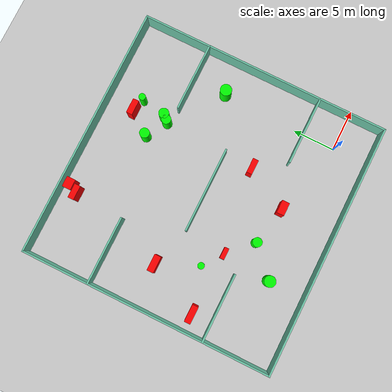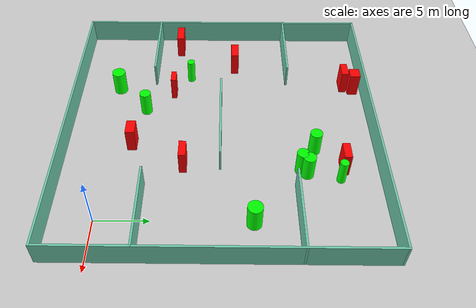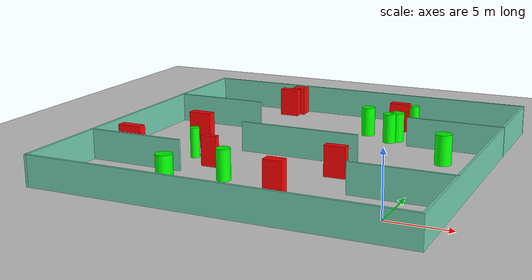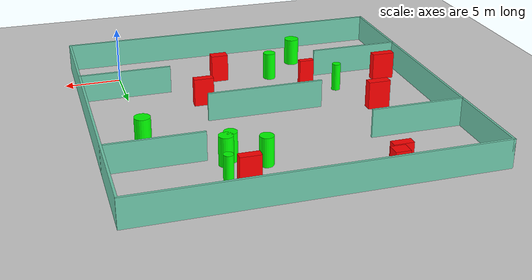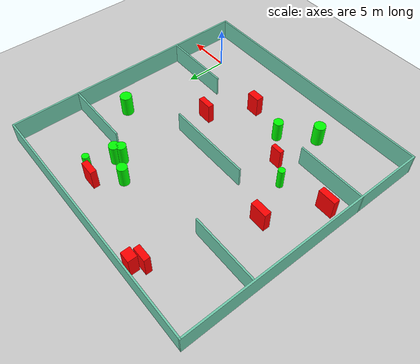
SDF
<sdf version="1.7">
 <world name="default">
  <light name="sun" type="directional">
   <pose>0 0 10 0 -0 0</pose>
   <diffuse>0.8 0.8 0.8 1</diffuse>
   <specular>0.2 0.2 0.2 1</specular>
   <attenuation>
    <range>1000</range>
    <constant>0.9</constant>
    <linear>0.01</linear>
    <quadratic>0.001</quadratic>
   </attenuation>
   <direction>-0.5 0.1 -0.9</direction>
   <spot><inner_angle>0</inner_angle><outer_angle>0</outer_angle><falloff>0</falloff></spot>
  </light>
  <model name="ground_plane">
   <static>1</static>
   <link name="link">
    <collision name="collision">
     <geometry><plane><normal>0 0 1</normal><size>100 100</size></plane></geometry>
     <surface>
      <contact><collide_bitmask>65535</collide_bitmask></contact>
      <friction><ode><mu>100</mu><mu2>50</mu2></ode></friction>
     </surface>
    </collision>
    <visual name="visual">
     <cast_shadows>0</cast_shadows>
     <geometry><plane><normal>0 0 1</normal><size>100 100</size></plane></geometry>
     <material>
      <script><uri>file://media/materials/scripts/gazebo.material</uri><name>Gazebo/Grey</name></script>
     </material>
    </visual>
   </link>
  </model>
  <gravity>0 0 -9.8</gravity>
  <magnetic_field>6e-06 2.3e-05 -4.2e-05</magnetic_field>
  <atmosphere type="adiabatic"/>
  <physics type="ode">
   <max_step_size>0.001</max_step_size>
   <real_time_factor>1</real_time_factor>
   <real_time_update_rate>1000</real_time_update_rate>
  </physics>
  <scene><ambient>0.4 0.4 0.4 1</ambient><background>0.7 0.7 0.7 1</background><shadows>1</shadows></scene>
  <spherical_coordinates>
   <surface_model>EARTH_WGS84</surface_model>
   <latitude_deg>0</latitude_deg>
   <longitude_deg>0</longitude_deg>
   <elevation>0</elevation>
   <heading_deg>0</heading_deg>
  </spherical_coordinates>
  <model name="my_base_walls">
   <link name="Wall_10">
    <collision name="Wall_10_Collision">
     <geometry><box><size>8.2 0.2 2.5</size></box></geometry>
     <pose>0 0 1.25 0 -0 0</pose>
    </collision>
    <visual name="Wall_10_Visual">
     <pose>0 0 1.25 0 -0 0</pose>
     <geometry><box><size>8.2 0.2 2.5</size></box></geometry>
     <material>
      <script><uri>file://media/materials/scripts/gazebo.material</uri><name>Gazebo/Grey</name></script>
      <ambient>0.435294 0.796078 0.67451 1</ambient>
     </material>
     <meta><layer>0</layer></meta>
    </visual>
    <pose>-11 -7 0 0 -0 0</pose>
   </link>
   <link name="Wall_12">
    <collision name="Wall_12_Collision">
     <geometry><box><size>8.2 0.2 2.5</size></box></geometry>
     <pose>0 0 1.25 0 -0 0</pose>
    </collision>
    <visual name="Wall_12_Visual">
     <pose>0 0 1.25 0 -0 0</pose>
     <geometry><box><size>8.2 0.2 2.5</size></box></geometry>
     <material>
      <script><uri>file://media/materials/scripts/gazebo.material</uri><name>Gazebo/Grey</name></script>
      <ambient>0.435294 0.796078 0.67451 1</ambient>
     </material>
     <meta><layer>0</layer></meta>
    </visual>
    <pose>-11 7 0 0 -0 0</pose>
   </link>
   <link name="Wall_14">
    <collision name="Wall_14_Collision">
     <geometry><box><size>8.2 0.2 2.5</size></box></geometry>
     <pose>0 0 1.25 0 -0 0</pose>
    </collision>
    <visual name="Wall_14_Visual">
     <pose>0 0 1.25 0 -0 0</pose>
     <geometry><box><size>8.2 0.2 2.5</size></box></geometry>
     <material>
      <script><uri>file://media/materials/scripts/gazebo.material</uri><name>Gazebo/Grey</name></script>
      <ambient>0.435294 0.796078 0.67451 1</ambient>
     </material>
     <meta><layer>0</layer></meta>
    </visual>
    <pose>11 7 0 0 -0 3.14159</pose>
   </link>
   <link name="Wall_16">
    <collision name="Wall_16_Collision">
     <geometry><box><size>10.2 0.2 2.5</size></box></geometry>
     <pose>0 0 1.25 0 -0 0</pose>
    </collision>
    <visual name="Wall_16_Visual">
     <pose>0 0 1.25 0 -0 0</pose>
     <geometry><box><size>10.2 0.2 2.5</size></box></geometry>
     <material>
      <script><uri>file://media/materials/scripts/gazebo.material</uri><name>Gazebo/Grey</name></script>
      <ambient>0.435294 0.796078 0.67451 1</ambient>
     </material>
     <meta><layer>0</layer></meta>
    </visual>
    <pose>0 0 0 0 -0 3.14159</pose>
   </link>
   <link name="Wall_2">
    <collision name="Wall_2_Collision">
     <geometry><box><size>30.2 0.2 2.5</size></box></geometry>
     <pose>0 0 1.25 0 -0 0</pose>
    </collision>
    <visual name="Wall_2_Visual">
     <pose>0 0 1.25 0 -0 0</pose>
     <geometry><box><size>30.2 0.2 2.5</size></box></geometry>
     <material>
      <script><uri>file://media/materials/scripts/gazebo.material</uri><name>Gazebo/Grey</name></script>
      <ambient>0.435294 0.796078 0.67451 1</ambient>
     </material>
     <meta><layer>0</layer></meta>
    </visual>
    <pose>0 -15 0 0 -0 3.14159</pose>
   </link>
   <link name="Wall_3">
    <collision name="Wall_3_Collision">
     <geometry><box><size>30.2 0.2 2.5</size></box></geometry>
     <pose>0 0 1.25 0 -0 0</pose>
    </collision>
    <visual name="Wall_3_Visual">
     <pose>0 0 1.25 0 -0 0</pose>
     <geometry><box><size>30.2 0.2 2.5</size></box></geometry>
     <material>
      <script><uri>file://media/materials/scripts/gazebo.material</uri><name>Gazebo/Grey</name></script>
      <ambient>0.435294 0.796078 0.67451 1</ambient>
     </material>
     <meta><layer>0</layer></meta>
    </visual>
    <pose>-15 0 0 0 -0 1.5708</pose>
   </link>
   <link name="Wall_4">
    <collision name="Wall_4_Collision">
     <geometry><box><size>30.2 0.2 2.5</size></box></geometry>
     <pose>0 0 1.25 0 -0 0</pose>
    </collision>
    <visual name="Wall_4_Visual">
     <pose>0 0 1.25 0 -0 0</pose>
     <geometry><box><size>30.2 0.2 2.5</size></box></geometry>
     <material>
      <script><uri>file://media/materials/scripts/gazebo.material</uri><name>Gazebo/Grey</name></script>
      <ambient>0.435294 0.796078 0.67451 1</ambient>
     </material>
     <meta><layer>0</layer></meta>
    </visual>
    <pose>0 15 0 0 -0 0</pose>
   </link>
   <link name="Wall_6">
    <collision name="Wall_6_Collision">
     <geometry><box><size>30.2 0.2 2.5</size></box></geometry>
     <pose>0 0 1.25 0 -0 0</pose>
    </collision>
    <visual name="Wall_6_Visual">
     <pose>0 0 1.25 0 -0 0</pose>
     <geometry><box><size>30.2 0.2 2.5</size></box></geometry>
     <material>
      <script><uri>file://media/materials/scripts/gazebo.material</uri><name>Gazebo/Grey</name></script>
      <ambient>0.435294 0.796078 0.67451 1</ambient>
     </material>
     <meta><layer>0</layer></meta>
    </visual>
    <pose>15 0 0 0 -0 1.5708</pose>
   </link>
   <link name="Wall_8">
    <collision name="Wall_8_Collision">
     <geometry><box><size>8.2 0.2 2.5</size></box></geometry>
     <pose>0 0 1.25 0 -0 0</pose>
    </collision>
    <visual name="Wall_8_Visual">
     <pose>0 0 1.25 0 -0 0</pose>
     <geometry><box><size>8.2 0.2 2.5</size></box></geometry>
     <material>
      <script><uri>file://media/materials/scripts/gazebo.material</uri><name>Gazebo/Grey</name></script>
      <ambient>0.435294 0.796078 0.67451 1</ambient>
     </material>
     <meta><layer>0</layer></meta>
    </visual>
    <pose>11 -7 0 0 -0 3.14159</pose>
   </link>
   <static>1</static>
   <pose>-11 11 0 0 -0 0</pose>
  </model>
  <model name="cylinder1">
   <static>1</static>
   <link name="link">
    <inertial>
     <mass>1</mass>
     <inertia><ixx>0.5</ixx><ixy>0</ixy><ixz>0</ixz><iyy>0.5</iyy><iyz>0</iyz><izz>1</izz></inertia>
    </inertial>
    <collision name="collision">
     <geometry><cylinder><radius>0.4010766512154151</radius><length>2.5</length></cylinder></geometry>
    </collision>
    <visual name="visual">
     <geometry><cylinder><radius>0.4010766512154151</radius><length>2.5</length></cylinder></geometry>
     <material>
      <ambient>0 1 0 1</ambient>
      <diffuse>0 1 0 1</diffuse>
      <specular>0.1 0.1 0.1 1</specular>
      <emissive>0 0 0 0</emissive>
     </material>
    </visual>
   </link>
   <pose>-4.727284561230988 22.17659271392125 1.25 0 0 0</pose>
  </model>
  <model name="cylinder2">
   <static>1</static>
   <link name="link">
    <inertial>
     <mass>1</mass>
     <inertia><ixx>0.5</ixx><ixy>0</ixy><ixz>0</ixz><iyy>0.5</iyy><iyz>0</iyz><izz>1</izz></inertia>
    </inertial>
    <collision name="collision">
     <geometry><cylinder><radius>0.6695462769717231</radius><length>2.5</length></cylinder></geometry>
    </collision>
    <visual name="visual">
     <geometry><cylinder><radius>0.6695462769717231</radius><length>2.5</length></cylinder></geometry>
     <material>
      <ambient>0 1 0 1</ambient>
      <diffuse>0 1 0 1</diffuse>
      <specular>0.1 0.1 0.1 1</specular>
      <emissive>0 0 0 0</emissive>
     </material>
    </visual>
   </link>
   <pose>-16.932426352217764 0.26577652359211656 1.25 0 0 0</pose>
  </model>
  <model name="cylinder3">
   <static>1</static>
   <link name="link">
    <inertial>
     <mass>1</mass>
     <inertia><ixx>0.5</ixx><ixy>0</ixy><ixz>0</ixz><iyy>0.5</iyy><iyz>0</iyz><izz>1</izz></inertia>
    </inertial>
    <collision name="collision">
     <geometry><cylinder><radius>0.5556668905800656</radius><length>2.5</length></cylinder></geometry>
    </collision>
    <visual name="visual">
     <geometry><cylinder><radius>0.5556668905800656</radius><length>2.5</length></cylinder></geometry>
     <material>
      <ambient>0 1 0 1</ambient>
      <diffuse>0 1 0 1</diffuse>
      <specular>0.1 0.1 0.1 1</specular>
      <emissive>0 0 0 0</emissive>
     </material>
    </visual>
   </link>
   <pose>-13.706975376369508 3.3569841477915343 1.25 0 0 0</pose>
  </model>
  <model name="cylinder4">
   <static>1</static>
   <link name="link">
    <inertial>
     <mass>1</mass>
     <inertia><ixx>0.5</ixx><ixy>0</ixy><ixz>0</ixz><iyy>0.5</iyy><iyz>0</iyz><izz>1</izz></inertia>
    </inertial>
    <collision name="collision">
     <geometry><cylinder><radius>0.6006590080286244</radius><length>2.5</length></cylinder></geometry>
    </collision>
    <visual name="visual">
     <geometry><cylinder><radius>0.6006590080286244</radius><length>2.5</length></cylinder></geometry>
     <material>
      <ambient>0 1 0 1</ambient>
      <diffuse>0 1 0 1</diffuse>
      <specular>0.1 0.1 0.1 1</specular>
      <emissive>0 0 0 0</emissive>
     </material>
    </visual>
   </link>
   <pose>-5.33911040667099 19.12802083157666 1.25 0 0 0</pose>
  </model>
  <model name="cylinder5">
   <static>1</static>
   <link name="link">
    <inertial>
     <mass>1</mass>
     <inertia><ixx>0.5</ixx><ixy>0</ixy><ixz>0</ixz><iyy>0.5</iyy><iyz>0</iyz><izz>1</izz></inertia>
    </inertial>
    <collision name="collision">
     <geometry><cylinder><radius>0.6840842531182713</radius><length>2.5</length></cylinder></geometry>
    </collision>
    <visual name="visual">
     <geometry><cylinder><radius>0.6840842531182713</radius><length>2.5</length></cylinder></geometry>
     <material>
      <ambient>0 1 0 1</ambient>
      <diffuse>0 1 0 1</diffuse>
      <specular>0.1 0.1 0.1 1</specular>
      <emissive>0 0 0 0</emissive>
     </material>
    </visual>
   </link>
   <pose>0.18508485255788543 14.02744058404943 1.25 0 0 0</pose>
  </model>
  <model name="cylinder6">
   <static>1</static>
   <link name="link">
    <inertial>
     <mass>1</mass>
     <inertia><ixx>0.5</ixx><ixy>0</ixy><ixz>0</ixz><iyy>0.5</iyy><iyz>0</iyz><izz>1</izz></inertia>
    </inertial>
    <collision name="collision">
     <geometry><cylinder><radius>0.5824537392147904</radius><length>2.5</length></cylinder></geometry>
    </collision>
    <visual name="visual">
     <geometry><cylinder><radius>0.5824537392147904</radius><length>2.5</length></cylinder></geometry>
     <material>
      <ambient>0 1 0 1</ambient>
      <diffuse>0 1 0 1</diffuse>
      <specular>0.1 0.1 0.1 1</specular>
      <emissive>0 0 0 0</emissive>
     </material>
    </visual>
   </link>
   <pose>-8.3194027081888 20.046649870155903 1.25 0 0 0</pose>
  </model>
  <model name="cylinder7">
   <static>1</static>
   <link name="link">
    <inertial>
     <mass>1</mass>
     <inertia><ixx>0.5</ixx><ixy>0</ixy><ixz>0</ixz><iyy>0.5</iyy><iyz>0</iyz><izz>1</izz></inertia>
    </inertial>
    <collision name="collision">
     <geometry><cylinder><radius>0.5647196895321014</radius><length>2.5</length></cylinder></geometry>
    </collision>
    <visual name="visual">
     <geometry><cylinder><radius>0.5647196895321014</radius><length>2.5</length></cylinder></geometry>
     <material>
      <ambient>0 1 0 1</ambient>
      <diffuse>0 1 0 1</diffuse>
      <specular>0.1 0.1 0.1 1</specular>
      <emissive>0 0 0 0</emissive>
     </material>
    </visual>
   </link>
   <pose>-5.841555470547032 18.573108757776996 1.25 0 0 0</pose>
  </model>
  <model name="cylinder8">
   <static>1</static>
   <link name="link">
    <inertial>
     <mass>1</mass>
     <inertia><ixx>0.5</ixx><ixy>0</ixy><ixz>0</ixz><iyy>0.5</iyy><iyz>0</iyz><izz>1</izz></inertia>
    </inertial>
    <collision name="collision">
     <geometry><cylinder><radius>0.3888071095308574</radius><length>2.5</length></cylinder></geometry>
    </collision>
    <visual name="visual">
     <geometry><cylinder><radius>0.3888071095308574</radius><length>2.5</length></cylinder></geometry>
     <material>
      <ambient>0 1 0 1</ambient>
      <diffuse>0 1 0 1</diffuse>
      <specular>0.1 0.1 0.1 1</specular>
      <emissive>0 0 0 0</emissive>
     </material>
    </visual>
   </link>
   <pose>-18.746925264691267 7.764539083322116 1.25 0 0 0</pose>
  </model>
  <model name="box1">
   <static>1</static>
   <link name="link">
    <inertial>
     <mass>1</mass>
     <inertia><ixx>0.083</ixx><ixy>0</ixy><ixz>0</ixz><iyy>0.083</iyy><iyz>0</iyz><izz>0.083</izz></inertia>
    </inertial>
    <collision name="collision">
     <geometry><box><size>1.5367066787550905 0.8872149067802013 2.5</size></box></geometry>
    </collision>
    <visual name="visual">
     <geometry><box><size>1.5367066787550905 0.8872149067802013 2.5</size></box></geometry>
     <material>
      <ambient>1 0 0 1</ambient>
      <diffuse>1 0 0 1</diffuse>
      <specular>0.1 0.1 0.1 1</specular>
      <emissive>0 0 0 0</emissive>
     </material>
    </visual>
    <sensor name="my_contact" type="contact">
     <contact><collision>box_collision</collision><topic>__default_topic__</topic></contact>
    </sensor>
   </link>
   <pose>-9.024763078547348 2.446867837689723 1.25 0 0 0</pose>
  </model>
  <model name="box2">
   <static>1</static>
   <link name="link">
    <inertial>
     <mass>1</mass>
     <inertia><ixx>0.083</ixx><ixy>0</ixy><ixz>0</ixz><iyy>0.083</iyy><iyz>0</iyz><izz>0.083</izz></inertia>
    </inertial>
    <collision name="collision">
     <geometry><box><size>1.6913798764220782 0.6954159503896815 2.5</size></box></geometry>
    </collision>
    <visual name="visual">
     <geometry><box><size>1.6913798764220782 0.6954159503896815 2.5</size></box></geometry>
     <material>
      <ambient>1 0 0 1</ambient>
      <diffuse>1 0 0 1</diffuse>
      <specular>0.1 0.1 0.1 1</specular>
      <emissive>0 0 0 0</emissive>
     </material>
    </visual>
    <sensor name="my_contact" type="contact">
     <contact><collision>box_collision</collision><topic>__default_topic__</topic></contact>
    </sensor>
   </link>
   <pose>-17.706532287530024 24.00589549254093 1.25 0 0 0</pose>
  </model>
  <model name="box3">
   <static>1</static>
   <link name="link">
    <inertial>
     <mass>1</mass>
     <inertia><ixx>0.083</ixx><ixy>0</ixy><ixz>0</ixz><iyy>0.083</iyy><iyz>0</iyz><izz>0.083</izz></inertia>
    </inertial>
    <collision name="collision">
     <geometry><box><size>1.7441844841387955 0.6823564466350909 2.5</size></box></geometry>
    </collision>
    <visual name="visual">
     <geometry><box><size>1.7441844841387955 0.6823564466350909 2.5</size></box></geometry>
     <material>
      <ambient>1 0 0 1</ambient>
      <diffuse>1 0 0 1</diffuse>
      <specular>0.1 0.1 0.1 1</specular>
      <emissive>0 0 0 0</emissive>
     </material>
    </visual>
    <sensor name="my_contact" type="contact">
     <contact><collision>box_collision</collision><topic>__default_topic__</topic></contact>
    </sensor>
   </link>
   <pose>-6.332858290186312 7.518372633180039 1.25 0 0 0</pose>
  </model>
  <model name="box4">
   <static>1</static>
   <link name="link">
    <inertial>
     <mass>1</mass>
     <inertia><ixx>0.083</ixx><ixy>0</ixy><ixz>0</ixz><iyy>0.083</iyy><iyz>0</iyz><izz>0.083</izz></inertia>
    </inertial>
    <collision name="collision">
     <geometry><box><size>2.0430738549317216 0.7414236266290712 2.5</size></box></geometry>
    </collision>
    <visual name="visual">
     <geometry><box><size>2.0430738549317216 0.7414236266290712 2.5</size></box></geometry>
     <material>
      <ambient>1 0 0 1</ambient>
      <diffuse>1 0 0 1</diffuse>
      <specular>0.1 0.1 0.1 1</specular>
      <emissive>0 0 0 0</emissive>
     </material>
    </visual>
    <sensor name="my_contact" type="contact">
     <contact><collision>box_collision</collision><topic>__default_topic__</topic></contact>
    </sensor>
   </link>
   <pose>-23.88356331909265 6.382190619460353 1.25 0 0 0</pose>
  </model>
  <model name="box5">
   <static>1</static>
   <link name="link">
    <inertial>
     <mass>1</mass>
     <inertia><ixx>0.083</ixx><ixy>0</ixy><ixz>0</ixz><iyy>0.083</iyy><iyz>0</iyz><izz>0.083</izz></inertia>
    </inertial>
    <collision name="collision">
     <geometry><box><size>1.7469655314804093 0.7135593184292175 2.5</size></box></geometry>
    </collision>
    <visual name="visual">
     <geometry><box><size>1.7469655314804093 0.7135593184292175 2.5</size></box></geometry>
     <material>
      <ambient>1 0 0 1</ambient>
      <diffuse>1 0 0 1</diffuse>
      <specular>0.1 0.1 0.1 1</specular>
      <emissive>0 0 0 0</emissive>
     </material>
    </visual>
    <sensor name="my_contact" type="contact">
     <contact><collision>box_collision</collision><topic>__default_topic__</topic></contact>
    </sensor>
   </link>
   <pose>-6.221286436318737 22.63149336273372 1.25 0 0 0</pose>
  </model>
  <model name="box6">
   <static>1</static>
   <link name="link">
    <inertial>
     <mass>1</mass>
     <inertia><ixx>0.083</ixx><ixy>0</ixy><ixz>0</ixz><iyy>0.083</iyy><iyz>0</iyz><izz>0.083</izz></inertia>
    </inertial>
    <collision name="collision">
     <geometry><box><size>1.3295350278245586 0.525608375184776 2.5</size></box></geometry>
    </collision>
    <visual name="visual">
     <geometry><box><size>1.3295350278245586 0.525608375184776 2.5</size></box></geometry>
     <material>
      <ambient>1 0 0 1</ambient>
      <diffuse>1 0 0 1</diffuse>
      <specular>0.1 0.1 0.1 1</specular>
      <emissive>0 0 0 0</emissive>
     </material>
    </visual>
    <sensor name="my_contact" type="contact">
     <contact><collision>box_collision</collision><topic>__default_topic__</topic></contact>
    </sensor>
   </link>
   <pose>-16.402919967192677 6.069248681235077 1.25 0 0 0</pose>
  </model>
  <model name="box7">
   <static>1</static>
   <link name="link">
    <inertial>
     <mass>1</mass>
     <inertia><ixx>0.083</ixx><ixy>0</ixy><ixz>0</ixz><iyy>0.083</iyy><iyz>0</iyz><izz>0.083</izz></inertia>
    </inertial>
    <collision name="collision">
     <geometry><box><size>1.964250480137614 0.7937203737767264 2.5</size></box></geometry>
    </collision>
    <visual name="visual">
     <geometry><box><size>1.964250480137614 0.7937203737767264 2.5</size></box></geometry>
     <material>
      <ambient>1 0 0 1</ambient>
      <diffuse>1 0 0 1</diffuse>
      <specular>0.1 0.1 0.1 1</specular>
      <emissive>0 0 0 0</emissive>
     </material>
    </visual>
    <sensor name="my_contact" type="contact">
     <contact><collision>box_collision</collision><topic>__default_topic__</topic></contact>
    </sensor>
   </link>
   <pose>-20.819714853933114 12.482455168691411 1.25 0 0 0</pose>
  </model>
  <model name="box8">
   <static>1</static>
   <link name="link">
    <inertial>
     <mass>1</mass>
     <inertia><ixx>0.083</ixx><ixy>0</ixy><ixz>0</ixz><iyy>0.083</iyy><iyz>0</iyz><izz>0.083</izz></inertia>
    </inertial>
    <collision name="collision">
     <geometry><box><size>1.2393589301353143 1.0280899939730401 2.5</size></box></geometry>
    </collision>
    <visual name="visual">
     <geometry><box><size>1.2393589301353143 1.0280899939730401 2.5</size></box></geometry>
     <material>
      <ambient>1 0 0 1</ambient>
      <diffuse>1 0 0 1</diffuse>
      <specular>0.1 0.1 0.1 1</specular>
      <emissive>0 0 0 0</emissive>
     </material>
    </visual>
    <sensor name="my_contact" type="contact">
     <contact><collision>box_collision</collision><topic>__default_topic__</topic></contact>
    </sensor>
   </link>
   <pose>-17.119943068817747 24.993802277457714 1.25 0 0 0</pose>
  </model>
 </world>
</sdf>
